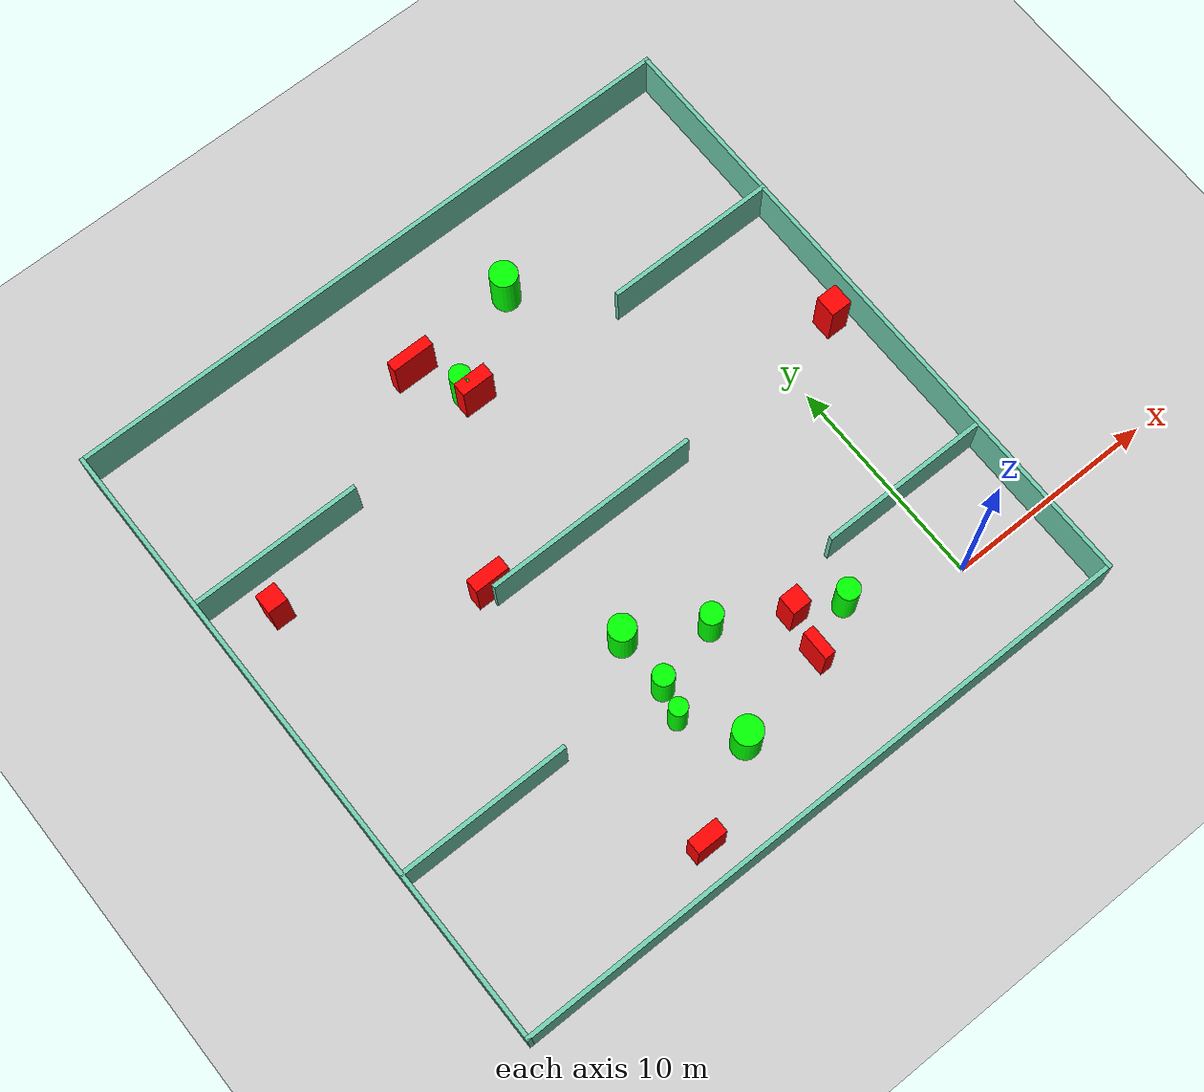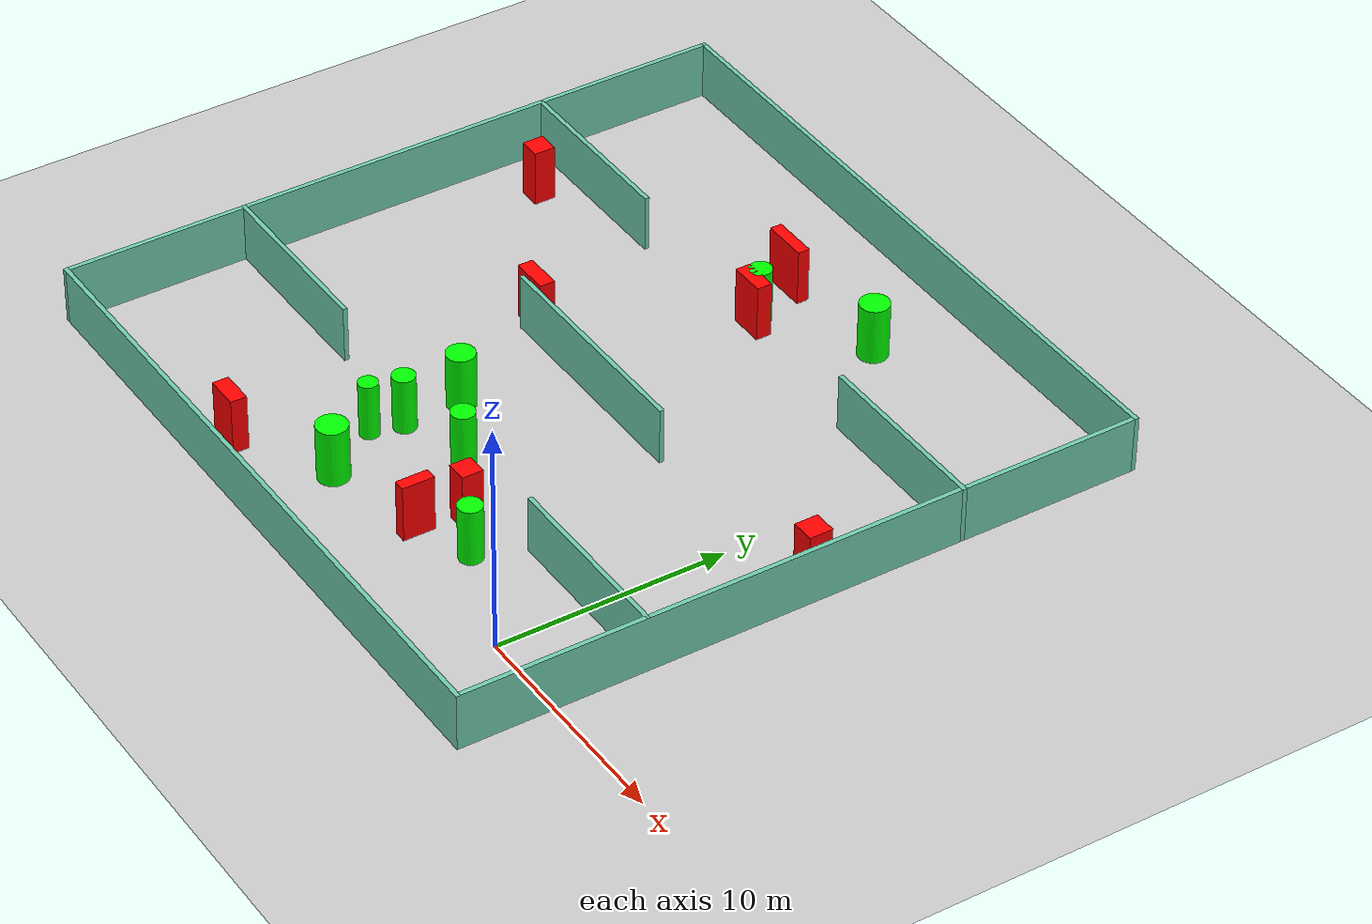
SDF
<sdf version="1.7">
 <world name="default">
  <light name="sun" type="directional">
   <pose>0 0 10 0 -0 0</pose>
   <diffuse>0.8 0.8 0.8 1</diffuse>
   <specular>0.2 0.2 0.2 1</specular>
   <attenuation>
    <range>1000</range>
    <constant>0.9</constant>
    <linear>0.01</linear>
    <quadratic>0.001</quadratic>
   </attenuation>
   <direction>-0.5 0.1 -0.9</direction>
   <spot><inner_angle>0</inner_angle><outer_angle>0</outer_angle><falloff>0</falloff></spot>
  </light>
  <model name="ground_plane">
   <static>1</static>
   <link name="link">
    <collision name="collision">
     <geometry><plane><normal>0 0 1</normal><size>100 100</size></plane></geometry>
     <surface>
      <contact><collide_bitmask>65535</collide_bitmask></contact>
      <friction><ode><mu>100</mu><mu2>50</mu2></ode></friction>
     </surface>
    </collision>
    <visual name="visual">
     <cast_shadows>0</cast_shadows>
     <geometry><plane><normal>0 0 1</normal><size>100 100</size></plane></geometry>
     <material>
      <script><uri>file://media/materials/scripts/gazebo.material</uri><name>Gazebo/Grey</name></script>
     </material>
    </visual>
   </link>
  </model>
  <gravity>0 0 -9.8</gravity>
  <magnetic_field>6e-06 2.3e-05 -4.2e-05</magnetic_field>
  <atmosphere type="adiabatic"/>
  <physics type="ode">
   <max_step_size>0.001</max_step_size>
   <real_time_factor>1</real_time_factor>
   <real_time_update_rate>1000</real_time_update_rate>
  </physics>
  <scene><ambient>0.4 0.4 0.4 1</ambient><background>0.7 0.7 0.7 1</background><shadows>1</shadows></scene>
  <spherical_coordinates>
   <surface_model>EARTH_WGS84</surface_model>
   <latitude_deg>0</latitude_deg>
   <longitude_deg>0</longitude_deg>
   <elevation>0</elevation>
   <heading_deg>0</heading_deg>
  </spherical_coordinates>
  <model name="my_base_walls">
   <link name="Wall_10">
    <collision name="Wall_10_Collision">
     <geometry><box><size>8.2 0.2 2.5</size></box></geometry>
     <pose>0 0 1.25 0 -0 0</pose>
    </collision>
    <visual name="Wall_10_Visual">
     <pose>0 0 1.25 0 -0 0</pose>
     <geometry><box><size>8.2 0.2 2.5</size></box></geometry>
     <material>
      <script><uri>file://media/materials/scripts/gazebo.material</uri><name>Gazebo/Grey</name></script>
      <ambient>0.435294 0.796078 0.67451 1</ambient>
     </material>
     <meta><layer>0</layer></meta>
    </visual>
    <pose>-11 -7 0 0 -0 0</pose>
   </link>
   <link name="Wall_12">
    <collision name="Wall_12_Collision">
     <geometry><box><size>8.2 0.2 2.5</size></box></geometry>
     <pose>0 0 1.25 0 -0 0</pose>
    </collision>
    <visual name="Wall_12_Visual">
     <pose>0 0 1.25 0 -0 0</pose>
     <geometry><box><size>8.2 0.2 2.5</size></box></geometry>
     <material>
      <script><uri>file://media/materials/scripts/gazebo.material</uri><name>Gazebo/Grey</name></script>
      <ambient>0.435294 0.796078 0.67451 1</ambient>
     </material>
     <meta><layer>0</layer></meta>
    </visual>
    <pose>-11 7 0 0 -0 0</pose>
   </link>
   <link name="Wall_14">
    <collision name="Wall_14_Collision">
     <geometry><box><size>8.2 0.2 2.5</size></box></geometry>
     <pose>0 0 1.25 0 -0 0</pose>
    </collision>
    <visual name="Wall_14_Visual">
     <pose>0 0 1.25 0 -0 0</pose>
     <geometry><box><size>8.2 0.2 2.5</size></box></geometry>
     <material>
      <script><uri>file://media/materials/scripts/gazebo.material</uri><name>Gazebo/Grey</name></script>
      <ambient>0.435294 0.796078 0.67451 1</ambient>
     </material>
     <meta><layer>0</layer></meta>
    </visual>
    <pose>11 7 0 0 -0 3.14159</pose>
   </link>
   <link name="Wall_16">
    <collision name="Wall_16_Collision">
     <geometry><box><size>10.2 0.2 2.5</size></box></geometry>
     <pose>0 0 1.25 0 -0 0</pose>
    </collision>
    <visual name="Wall_16_Visual">
     <pose>0 0 1.25 0 -0 0</pose>
     <geometry><box><size>10.2 0.2 2.5</size></box></geometry>
     <material>
      <script><uri>file://media/materials/scripts/gazebo.material</uri><name>Gazebo/Grey</name></script>
      <ambient>0.435294 0.796078 0.67451 1</ambient>
     </material>
     <meta><layer>0</layer></meta>
    </visual>
    <pose>0 0 0 0 -0 3.14159</pose>
   </link>
   <link name="Wall_2">
    <collision name="Wall_2_Collision">
     <geometry><box><size>30.2 0.2 2.5</size></box></geometry>
     <pose>0 0 1.25 0 -0 0</pose>
    </collision>
    <visual name="Wall_2_Visual">
     <pose>0 0 1.25 0 -0 0</pose>
     <geometry><box><size>30.2 0.2 2.5</size></box></geometry>
     <material>
      <script><uri>file://media/materials/scripts/gazebo.material</uri><name>Gazebo/Grey</name></script>
      <ambient>0.435294 0.796078 0.67451 1</ambient>
     </material>
     <meta><layer>0</layer></meta>
    </visual>
    <pose>0 -15 0 0 -0 3.14159</pose>
   </link>
   <link name="Wall_3">
    <collision name="Wall_3_Collision">
     <geometry><box><size>30.2 0.2 2.5</size></box></geometry>
     <pose>0 0 1.25 0 -0 0</pose>
    </collision>
    <visual name="Wall_3_Visual">
     <pose>0 0 1.25 0 -0 0</pose>
     <geometry><box><size>30.2 0.2 2.5</size></box></geometry>
     <material>
      <script><uri>file://media/materials/scripts/gazebo.material</uri><name>Gazebo/Grey</name></script>
      <ambient>0.435294 0.796078 0.67451 1</ambient>
     </material>
     <meta><layer>0</layer></meta>
    </visual>
    <pose>-15 0 0 0 -0 1.5708</pose>
   </link>
   <link name="Wall_4">
    <collision name="Wall_4_Collision">
     <geometry><box><size>30.2 0.2 2.5</size></box></geometry>
     <pose>0 0 1.25 0 -0 0</pose>
    </collision>
    <visual name="Wall_4_Visual">
     <pose>0 0 1.25 0 -0 0</pose>
     <geometry><box><size>30.2 0.2 2.5</size></box></geometry>
     <material>
      <script><uri>file://media/materials/scripts/gazebo.material</uri><name>Gazebo/Grey</name></script>
      <ambient>0.435294 0.796078 0.67451 1</ambient>
     </material>
     <meta><layer>0</layer></meta>
    </visual>
    <pose>0 15 0 0 -0 0</pose>
   </link>
   <link name="Wall_6">
    <collision name="Wall_6_Collision">
     <geometry><box><size>30.2 0.2 2.5</size></box></geometry>
     <pose>0 0 1.25 0 -0 0</pose>
    </collision>
    <visual name="Wall_6_Visual">
     <pose>0 0 1.25 0 -0 0</pose>
     <geometry><box><size>30.2 0.2 2.5</size></box></geometry>
     <material>
      <script><uri>file://media/materials/scripts/gazebo.material</uri><name>Gazebo/Grey</name></script>
      <ambient>0.435294 0.796078 0.67451 1</ambient>
     </material>
     <meta><layer>0</layer></meta>
    </visual>
    <pose>15 0 0 0 -0 1.5708</pose>
   </link>
   <link name="Wall_8">
    <collision name="Wall_8_Collision">
     <geometry><box><size>8.2 0.2 2.5</size></box></geometry>
     <pose>0 0 1.25 0 -0 0</pose>
    </collision>
    <visual name="Wall_8_Visual">
     <pose>0 0 1.25 0 -0 0</pose>
     <geometry><box><size>8.2 0.2 2.5</size></box></geometry>
     <material>
      <script><uri>file://media/materials/scripts/gazebo.material</uri><name>Gazebo/Grey</name></script>
      <ambient>0.435294 0.796078 0.67451 1</ambient>
     </material>
     <meta><layer>0</layer></meta>
    </visual>
    <pose>11 -7 0 0 -0 3.14159</pose>
   </link>
   <static>1</static>
   <pose>-11 11 0 0 -0 0</pose>
  </model>
  <model name="cylinder1">
   <static>1</static>
   <link name="link">
    <inertial>
     <mass>1</mass>
     <inertia><ixx>0.5</ixx><ixy>0</ixy><ixz>0</ixz><iyy>0.5</iyy><iyz>0</iyz><izz>1</izz></inertia>
    </inertial>
    <collision name="collision">
     <geometry><cylinder><radius>0.5117308017898587</radius><length>2.5</length></cylinder></geometry>
    </collision>
    <visual name="visual">
     <geometry><cylinder><radius>0.5117308017898587</radius><length>2.5</length></cylinder></geometry>
     <material>
      <ambient>0 1 0 1</ambient>
      <diffuse>0 1 0 1</diffuse>
      <specular>0.1 0.1 0.1 1</specular>
      <emissive>0 0 0 0</emissive>
     </material>
    </visual>
   </link>
   <pose>-4.905186180727625 1.8969588534138317 1.25 0 0 0</pose>
  </model>
  <model name="cylinder2">
   <static>1</static>
   <link name="link">
    <inertial>
     <mass>1</mass>
     <inertia><ixx>0.5</ixx><ixy>0</ixy><ixz>0</ixz><iyy>0.5</iyy><iyz>0</iyz><izz>1</izz></inertia>
    </inertial>
    <collision name="collision">
     <geometry><cylinder><radius>0.4174093494668205</radius><length>2.5</length></cylinder></geometry>
    </collision>
    <visual name="visual">
     <geometry><cylinder><radius>0.4174093494668205</radius><length>2.5</length></cylinder></geometry>
     <material>
      <ambient>0 1 0 1</ambient>
      <diffuse>0 1 0 1</diffuse>
      <specular>0.1 0.1 0.1 1</specular>
      <emissive>0 0 0 0</emissive>
     </material>
    </visual>
   </link>
   <pose>-13.392390738567045 2.4273333552690426 1.25 0 0 0</pose>
  </model>
  <model name="cylinder3">
   <static>1</static>
   <link name="link">
    <inertial>
     <mass>1</mass>
     <inertia><ixx>0.5</ixx><ixy>0</ixy><ixz>0</ixz><iyy>0.5</iyy><iyz>0</iyz><izz>1</izz></inertia>
    </inertial>
    <collision name="collision">
     <geometry><cylinder><radius>0.4876150726271542</radius><length>2.5</length></cylinder></geometry>
    </collision>
    <visual name="visual">
     <geometry><cylinder><radius>0.4876150726271542</radius><length>2.5</length></cylinder></geometry>
     <material>
      <ambient>0 1 0 1</ambient>
      <diffuse>0 1 0 1</diffuse>
      <specular>0.1 0.1 0.1 1</specular>
      <emissive>0 0 0 0</emissive>
     </material>
    </visual>
   </link>
   <pose>-13.038864519061955 3.7998439770217214 1.25 0 0 0</pose>
  </model>
  <model name="cylinder4">
   <static>1</static>
   <link name="link">
    <inertial>
     <mass>1</mass>
     <inertia><ixx>0.5</ixx><ixy>0</ixy><ixz>0</ixz><iyy>0.5</iyy><iyz>0</iyz><izz>1</izz></inertia>
    </inertial>
    <collision name="collision">
     <geometry><cylinder><radius>0.6139626869666236</radius><length>2.5</length></cylinder></geometry>
    </collision>
    <visual name="visual">
     <geometry><cylinder><radius>0.6139626869666236</radius><length>2.5</length></cylinder></geometry>
     <material>
      <ambient>0 1 0 1</ambient>
      <diffuse>0 1 0 1</diffuse>
      <specular>0.1 0.1 0.1 1</specular>
      <emissive>0 0 0 0</emissive>
     </material>
    </visual>
   </link>
   <pose>-13.094068617118417 6.386702009794895 1.25 0 0 0</pose>
  </model>
  <model name="cylinder5">
   <static>1</static>
   <link name="link">
    <inertial>
     <mass>1</mass>
     <inertia><ixx>0.5</ixx><ixy>0</ixy><ixz>0</ixz><iyy>0.5</iyy><iyz>0</iyz><izz>1</izz></inertia>
    </inertial>
    <collision name="collision">
     <geometry><cylinder><radius>0.6426167752136416</radius><length>2.5</length></cylinder></geometry>
    </collision>
    <visual name="visual">
     <geometry><cylinder><radius>0.6426167752136416</radius><length>2.5</length></cylinder></geometry>
     <material>
      <ambient>0 1 0 1</ambient>
      <diffuse>0 1 0 1</diffuse>
      <specular>0.1 0.1 0.1 1</specular>
      <emissive>0 0 0 0</emissive>
     </material>
    </visual>
   </link>
   <pose>-7.255104122601216 21.75945386446782 1.25 0 0 0</pose>
  </model>
  <model name="cylinder6">
   <static>1</static>
   <link name="link">
    <inertial>
     <mass>1</mass>
     <inertia><ixx>0.5</ixx><ixy>0</ixy><ixz>0</ixz><iyy>0.5</iyy><iyz>0</iyz><izz>1</izz></inertia>
    </inertial>
    <collision name="collision">
     <geometry><cylinder><radius>0.5115273074606966</radius><length>2.5</length></cylinder></geometry>
    </collision>
    <visual name="visual">
     <geometry><cylinder><radius>0.5115273074606966</radius><length>2.5</length></cylinder></geometry>
     <material>
      <ambient>0 1 0 1</ambient>
      <diffuse>0 1 0 1</diffuse>
      <specular>0.1 0.1 0.1 1</specular>
      <emissive>0 0 0 0</emissive>
     </material>
    </visual>
   </link>
   <pose>-9.898542216903 4.575709658417281 1.25 0 0 0</pose>
  </model>
  <model name="cylinder7">
   <static>1</static>
   <link name="link">
    <inertial>
     <mass>1</mass>
     <inertia><ixx>0.5</ixx><ixy>0</ixy><ixz>0</ixz><iyy>0.5</iyy><iyz>0</iyz><izz>1</izz></inertia>
    </inertial>
    <collision name="collision">
     <geometry><cylinder><radius>0.4896793775360806</radius><length>2.5</length></cylinder></geometry>
    </collision>
    <visual name="visual">
     <geometry><cylinder><radius>0.4896793775360806</radius><length>2.5</length></cylinder></geometry>
     <material>
      <ambient>0 1 0 1</ambient>
      <diffuse>0 1 0 1</diffuse>
      <specular>0.1 0.1 0.1 1</specular>
      <emissive>0 0 0 0</emissive>
     </material>
    </visual>
   </link>
   <pose>-11.518317423522287 19.2406122018454 1.25 0 0 0</pose>
  </model>
  <model name="cylinder8">
   <static>1</static>
   <link name="link">
    <inertial>
     <mass>1</mass>
     <inertia><ixx>0.5</ixx><ixy>0</ixy><ixz>0</ixz><iyy>0.5</iyy><iyz>0</iyz><izz>1</izz></inertia>
    </inertial>
    <collision name="collision">
     <geometry><cylinder><radius>0.6662581749216451</radius><length>2.5</length></cylinder></geometry>
    </collision>
    <visual name="visual">
     <geometry><cylinder><radius>0.6662581749216451</radius><length>2.5</length></cylinder></geometry>
     <material>
      <ambient>0 1 0 1</ambient>
      <diffuse>0 1 0 1</diffuse>
      <specular>0.1 0.1 0.1 1</specular>
      <emissive>0 0 0 0</emissive>
     </material>
    </visual>
   </link>
   <pose>-11.838628372958134 -0.05753674637539863 1.25 0 0 0</pose>
  </model>
  <model name="box1">
   <static>1</static>
   <link name="link">
    <inertial>
     <mass>1</mass>
     <inertia><ixx>0.083</ixx><ixy>0</ixy><ixz>0</ixz><iyy>0.083</iyy><iyz>0</iyz><izz>0.083</izz></inertia>
    </inertial>
    <collision name="collision">
     <geometry><box><size>0.9516530804764898 0.927969032922571 2.5</size></box></geometry>
    </collision>
    <visual name="visual">
     <geometry><box><size>0.9516530804764898 0.927969032922571 2.5</size></box></geometry>
     <material>
      <ambient>1 0 0 1</ambient>
      <diffuse>1 0 0 1</diffuse>
      <specular>0.1 0.1 0.1 1</specular>
      <emissive>0 0 0 0</emissive>
     </material>
    </visual>
    <sensor name="my_contact" type="contact">
     <contact><collision>box_collision</collision><topic>__default_topic__</topic></contact>
    </sensor>
   </link>
   <pose>-23.386546847436637 16.256936942102897 1.25 0 0 0</pose>
  </model>
  <model name="box2">
   <static>1</static>
   <link name="link">
    <inertial>
     <mass>1</mass>
     <inertia><ixx>0.083</ixx><ixy>0</ixy><ixz>0</ixz><iyy>0.083</iyy><iyz>0</iyz><izz>0.083</izz></inertia>
    </inertial>
    <collision name="collision">
     <geometry><box><size>0.9351558220705392 0.9176396109106854 2.5</size></box></geometry>
    </collision>
    <visual name="visual">
     <geometry><box><size>0.9351558220705392 0.9176396109106854 2.5</size></box></geometry>
     <material>
      <ambient>1 0 0 1</ambient>
      <diffuse>1 0 0 1</diffuse>
      <specular>0.1 0.1 0.1 1</specular>
      <emissive>0 0 0 0</emissive>
     </material>
    </visual>
    <sensor name="my_contact" type="contact">
     <contact><collision>box_collision</collision><topic>__default_topic__</topic></contact>
    </sensor>
   </link>
   <pose>-6.879941519951842 2.911099074850055 1.25 0 0 0</pose>
  </model>
  <model name="box3">
   <static>1</static>
   <link name="link">
    <inertial>
     <mass>1</mass>
     <inertia><ixx>0.083</ixx><ixy>0</ixy><ixz>0</ixz><iyy>0.083</iyy><iyz>0</iyz><izz>0.083</izz></inertia>
    </inertial>
    <collision name="collision">
     <geometry><box><size>1.554633414441859 0.6583460830099126 2.5</size></box></geometry>
    </collision>
    <visual name="visual">
     <geometry><box><size>1.554633414441859 0.6583460830099126 2.5</size></box></geometry>
     <material>
      <ambient>1 0 0 1</ambient>
      <diffuse>1 0 0 1</diffuse>
      <specular>0.1 0.1 0.1 1</specular>
      <emissive>0 0 0 0</emissive>
     </material>
    </visual>
    <sensor name="my_contact" type="contact">
     <contact><collision>box_collision</collision><topic>__default_topic__</topic></contact>
    </sensor>
   </link>
   <pose>-11.207876246542959 18.70659305802985 1.25 0 0 0</pose>
  </model>
  <model name="box4">
   <static>1</static>
   <link name="link">
    <inertial>
     <mass>1</mass>
     <inertia><ixx>0.083</ixx><ixy>0</ixy><ixz>0</ixz><iyy>0.083</iyy><iyz>0</iyz><izz>0.083</izz></inertia>
    </inertial>
    <collision name="collision">
     <geometry><box><size>1.0152584184654336 1.0313360682210604 2.5</size></box></geometry>
    </collision>
    <visual name="visual">
     <geometry><box><size>1.0152584184654336 1.0313360682210604 2.5</size></box></geometry>
     <material>
      <ambient>1 0 0 1</ambient>
      <diffuse>1 0 0 1</diffuse>
      <specular>0.1 0.1 0.1 1</specular>
      <emissive>0 0 0 0</emissive>
     </material>
    </visual>
    <sensor name="my_contact" type="contact">
     <contact><collision>box_collision</collision><topic>__default_topic__</topic></contact>
    </sensor>
   </link>
   <pose>2.927183731741547 11.996018433569311 1.25 0 0 0</pose>
  </model>
  <model name="box5">
   <static>1</static>
   <link name="link">
    <inertial>
     <mass>1</mass>
     <inertia><ixx>0.083</ixx><ixy>0</ixy><ixz>0</ixz><iyy>0.083</iyy><iyz>0</iyz><izz>0.083</izz></inertia>
    </inertial>
    <collision name="collision">
     <geometry><box><size>2.014122039535164 0.5209041164597117 2.5</size></box></geometry>
    </collision>
    <visual name="visual">
     <geometry><box><size>2.014122039535164 0.5209041164597117 2.5</size></box></geometry>
     <material>
      <ambient>1 0 0 1</ambient>
      <diffuse>1 0 0 1</diffuse>
      <specular>0.1 0.1 0.1 1</specular>
      <emissive>0 0 0 0</emissive>
     </material>
    </visual>
    <sensor name="my_contact" type="contact">
     <contact><collision>box_collision</collision><topic>__default_topic__</topic></contact>
    </sensor>
   </link>
   <pose>-12.565920109574897 21.326524506733836 1.25 0 0 0</pose>
  </model>
  <model name="box6">
   <static>1</static>
   <link name="link">
    <inertial>
     <mass>1</mass>
     <inertia><ixx>0.083</ixx><ixy>0</ixy><ixz>0</ixz><iyy>0.083</iyy><iyz>0</iyz><izz>0.083</izz></inertia>
    </inertial>
    <collision name="collision">
     <geometry><box><size>1.6724067001872727 0.666369425364411 2.5</size></box></geometry>
    </collision>
    <visual name="visual">
     <geometry><box><size>1.6724067001872727 0.666369425364411 2.5</size></box></geometry>
     <material>
      <ambient>1 0 0 1</ambient>
      <diffuse>1 0 0 1</diffuse>
      <specular>0.1 0.1 0.1 1</specular>
      <emissive>0 0 0 0</emissive>
     </material>
    </visual>
    <sensor name="my_contact" type="contact">
     <contact><collision>box_collision</collision><topic>__default_topic__</topic></contact>
    </sensor>
   </link>
   <pose>-15.94479698683407 11.565433457186789 1.25 0 0 0</pose>
  </model>
  <model name="box7">
   <static>1</static>
   <link name="link">
    <inertial>
     <mass>1</mass>
     <inertia><ixx>0.083</ixx><ixy>0</ixy><ixz>0</ixz><iyy>0.083</iyy><iyz>0</iyz><izz>0.083</izz></inertia>
    </inertial>
    <collision name="collision">
     <geometry><box><size>0.5195860737408182 1.396511579910747 2.5</size></box></geometry>
    </collision>
    <visual name="visual">
     <geometry><box><size>0.5195860737408182 1.396511579910747 2.5</size></box></geometry>
     <material>
      <ambient>1 0 0 1</ambient>
      <diffuse>1 0 0 1</diffuse>
      <specular>0.1 0.1 0.1 1</specular>
      <emissive>0 0 0 0</emissive>
     </material>
    </visual>
    <sensor name="my_contact" type="contact">
     <contact><collision>box_collision</collision><topic>__default_topic__</topic></contact>
    </sensor>
   </link>
   <pose>-7.30026883621867 0.9206172072953747 1.25 0 0 0</pose>
  </model>
  <model name="box8">
   <static>1</static>
   <link name="link">
    <inertial>
     <mass>1</mass>
     <inertia><ixx>0.083</ixx><ixy>0</ixy><ixz>0</ixz><iyy>0.083</iyy><iyz>0</iyz><izz>0.083</izz></inertia>
    </inertial>
    <collision name="collision">
     <geometry><box><size>1.443619254159187 0.7017863070804073 2.5</size></box></geometry>
    </collision>
    <visual name="visual">
     <geometry><box><size>1.443619254159187 0.7017863070804073 2.5</size></box></geometry>
     <material>
      <ambient>1 0 0 1</ambient>
      <diffuse>1 0 0 1</diffuse>
      <specular>0.1 0.1 0.1 1</specular>
      <emissive>0 0 0 0</emissive>
     </material>
    </visual>
    <sensor name="my_contact" type="contact">
     <contact><collision>box_collision</collision><topic>__default_topic__</topic></contact>
    </sensor>
   </link>
   <pose>-15.78475142838246 -2.3044864825687346 1.25 0 0 0</pose>
  </model>
 </world>
</sdf>
